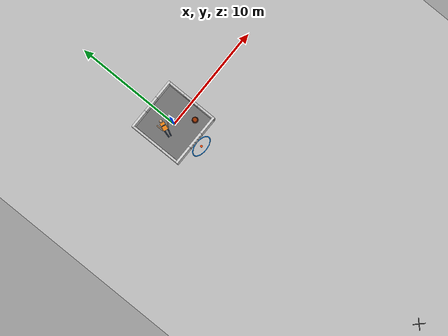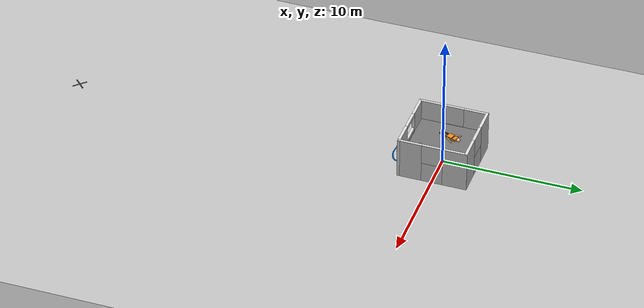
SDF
<?xml version="1.0" ?>
<sdf version="1.6">
  <world name="surveillance_building">

    <!-- ── Physics ─────────────────────────────────────────────── -->
    <physics name="default" default="true" type="ode">
      <max_step_size>0.002</max_step_size>
      <real_time_factor>1.0</real_time_factor>
      <real_time_update_rate>500</real_time_update_rate>
    </physics>

    <plugin
      filename="gz-sim-physics-system"
      name="gz::sim::systems::Physics">
    </plugin>

    <plugin
      filename="gz-sim-sensors-system"
      name="gz::sim::systems::Sensors">
    </plugin>

    <plugin
      filename="gz-sim-scene-broadcaster-system"
      name="gz::sim::systems::SceneBroadcaster">
    </plugin>

    <plugin
      filename="gz-sim-user-commands-system"
      name="gz::sim::systems::UserCommands">
    </plugin>

    <!-- ── Scene ──────────────────────────────────────────────── -->
    <scene>
      <ambient>0.6 0.6 0.6 1</ambient>
      <background>0.7 0.8 0.9 1</background>
      <shadows>true</shadows>
    </scene>

    <!-- ── Sun ────────────────────────────────────────────────── -->
    <light name="sun" type="directional">
      <cast_shadows>true</cast_shadows>
      <pose>0 0 10 0 0 0</pose>
      <diffuse>0.9 0.9 0.9 1</diffuse>
      <specular>0.1 0.1 0.1 1</specular>
      <direction>-0.5 0.1 -0.9</direction>
    </light>

    <!-- ── Ground Plane ───────────────────────────────────────── -->
    <model name="ground_plane">
      <static>true</static>
      <link name="link">
        <collision name="collision">
          <geometry>
            <plane>
              <normal>0 0 1</normal>
              <size>80 80</size>
            </plane>
          </geometry>
        </collision>
        <visual name="visual">
          <cast_shadows>false</cast_shadows>
          <geometry>
            <plane>
              <normal>0 0 1</normal>
              <size>80 80</size>
            </plane>
          </geometry>
          <material>
            <ambient>0.75 0.75 0.75 1</ambient>
            <diffuse>0.75 0.75 0.75 1</diffuse>
          </material>
        </visual>
      </link>
    </model>

    <model name="surveillance_building">
      <static>true</static>
      <pose>0 0 0 0 0 0</pose>

      <link name="floor">
        <pose>0 0 1.45 0 0 0</pose>
        <collision name="c">
          <geometry><box><size>4.55 4.55 0.1</size></box></geometry>
        </collision>
        <visual name="v">
          <geometry><box><size>4.55 4.55 0.1</size></box></geometry>
          <material>
            <ambient>0.45 0.45 0.45 1</ambient>
            <diffuse>0.45 0.45 0.45 1</diffuse>
          </material>
        </visual>
      </link>

      <!-- ══ NORTH WALL  (y = +2.4, outer face at y = +2.5) ══
           Runs along X-axis.
           ─────────────────────────────────────────────────────── -->

      <!-- Left column  x ∈ [−2.50, −0.75]  full height -->
      <link name="n_col_l">
        <pose>-1.625 2.4 1.5 0 0 0</pose>
        <collision name="c"><geometry><box><size>1.75 0.2 3.0</size></box></geometry></collision>
        <visual name="v">
          <geometry><box><size>1.75 0.2 3.0</size></box></geometry>
          <material><ambient>0.85 0.85 0.85 1</ambient><diffuse>0.85 0.85 0.85 1</diffuse></material>
        </visual>
      </link>

      <!-- Right column  x ∈ [+0.75, +2.50]  full height -->
      <link name="n_col_r">
        <pose>1.625 2.4 1.5 0 0 0</pose>
        <collision name="c"><geometry><box><size>1.75 0.2 3.0</size></box></geometry></collision>
        <visual name="v">
          <geometry><box><size>1.75 0.2 3.0</size></box></geometry>
          <material><ambient>0.85 0.85 0.85 1</ambient><diffuse>0.85 0.85 0.85 1</diffuse></material>
        </visual>
      </link>

      <!-- Solid lower wall and blocked upper window centre panel -->
      <link name="n_bot">
        <pose>0 2.4 0.75 0 0 0</pose>
        <collision name="c"><geometry><box><size>1.5 0.2 1.5</size></box></geometry></collision>
        <visual name="v">
          <geometry><box><size>1.5 0.2 1.5</size></box></geometry>
          <material><ambient>0.85 0.85 0.85 1</ambient><diffuse>0.85 0.85 0.85 1</diffuse></material>
        </visual>
      </link>

      <link name="n_top">
        <pose>0 2.4 2.25 0 0 0</pose>
        <collision name="c"><geometry><box><size>1.5 0.2 1.5</size></box></geometry></collision>
        <visual name="v">
          <geometry><box><size>1.5 0.2 1.5</size></box></geometry>
          <material><ambient>0.85 0.85 0.85 1</ambient><diffuse>0.85 0.85 0.85 1</diffuse></material>
        </visual>
      </link>

      <!-- ══ SOUTH WALL  (y = −2.4, outer face at y = −2.5) ══ -->

      <link name="s_col_l">
        <pose>-1.625 -2.4 1.5 0 0 0</pose>
        <collision name="c"><geometry><box><size>1.75 0.2 3.0</size></box></geometry></collision>
        <visual name="v">
          <geometry><box><size>1.75 0.2 3.0</size></box></geometry>
          <material><ambient>0.85 0.85 0.85 1</ambient><diffuse>0.85 0.85 0.85 1</diffuse></material>
        </visual>
      </link>

      <link name="s_col_r">
        <pose>1.625 -2.4 1.5 0 0 0</pose>
        <collision name="c"><geometry><box><size>1.75 0.2 3.0</size></box></geometry></collision>
        <visual name="v">
          <geometry><box><size>1.75 0.2 3.0</size></box></geometry>
          <material><ambient>0.85 0.85 0.85 1</ambient><diffuse>0.85 0.85 0.85 1</diffuse></material>
        </visual>
      </link>

      <link name="s_bot">
        <pose>0 -2.4 0.75 0 0 0</pose>
        <collision name="c"><geometry><box><size>1.5 0.2 1.5</size></box></geometry></collision>
        <visual name="v">
          <geometry><box><size>1.5 0.2 1.5</size></box></geometry>
          <material><ambient>0.85 0.85 0.85 1</ambient><diffuse>0.85 0.85 0.85 1</diffuse></material>
        </visual>
      </link>

      <link name="s_upper_sill">
        <pose>0 -2.4 1.625 0 0 0</pose>
        <collision name="c"><geometry><box><size>1.5 0.2 0.25</size></box></geometry></collision>
        <visual name="v">
          <geometry><box><size>1.5 0.2 0.25</size></box></geometry>
          <material><ambient>0.85 0.85 0.85 1</ambient><diffuse>0.85 0.85 0.85 1</diffuse></material>
        </visual>
      </link>

      <link name="s_top">
        <pose>0 -2.4 2.875 0 0 0</pose>
        <collision name="c"><geometry><box><size>1.5 0.2 0.25</size></box></geometry></collision>
        <visual name="v">
          <geometry><box><size>1.5 0.2 0.25</size></box></geometry>
          <material><ambient>0.85 0.85 0.85 1</ambient><diffuse>0.85 0.85 0.85 1</diffuse></material>
        </visual>
      </link>

      <!-- ══ EAST WALL  (x = +2.4, outer face at x = +2.5) ══
           Runs along Y-axis.  Size swaps x↔y vs N/S walls.
           ─────────────────────────────────────────────────────── -->

      <link name="e_col_l">
        <pose>2.4 -1.625 1.5 0 0 0</pose>
        <collision name="c"><geometry><box><size>0.2 1.75 3.0</size></box></geometry></collision>
        <visual name="v">
          <geometry><box><size>0.2 1.75 3.0</size></box></geometry>
          <material><ambient>0.80 0.80 0.80 1</ambient><diffuse>0.80 0.80 0.80 1</diffuse></material>
        </visual>
      </link>

      <link name="e_col_r">
        <pose>2.4 1.625 1.5 0 0 0</pose>
        <collision name="c"><geometry><box><size>0.2 1.75 3.0</size></box></geometry></collision>
        <visual name="v">
          <geometry><box><size>0.2 1.75 3.0</size></box></geometry>
          <material><ambient>0.80 0.80 0.80 1</ambient><diffuse>0.80 0.80 0.80 1</diffuse></material>
        </visual>
      </link>

      <link name="e_bot">
        <pose>2.4 0 0.75 0 0 0</pose>
        <collision name="c"><geometry><box><size>0.2 1.5 1.5</size></box></geometry></collision>
        <visual name="v">
          <geometry><box><size>0.2 1.5 1.5</size></box></geometry>
          <material><ambient>0.80 0.80 0.80 1</ambient><diffuse>0.80 0.80 0.80 1</diffuse></material>
        </visual>
      </link>

      <link name="e_top">
        <pose>2.4 0 2.25 0 0 0</pose>
        <collision name="c"><geometry><box><size>0.2 1.5 1.5</size></box></geometry></collision>
        <visual name="v">
          <geometry><box><size>0.2 1.5 1.5</size></box></geometry>
          <material><ambient>0.80 0.80 0.80 1</ambient><diffuse>0.80 0.80 0.80 1</diffuse></material>
        </visual>
      </link>

      <!-- ══ WEST WALL  (x = −2.4, outer face at x = −2.5) ══ -->

      <link name="w_col_l">
        <pose>-2.4 -1.625 1.5 0 0 0</pose>
        <collision name="c"><geometry><box><size>0.2 1.75 3.0</size></box></geometry></collision>
        <visual name="v">
          <geometry><box><size>0.2 1.75 3.0</size></box></geometry>
          <material><ambient>0.80 0.80 0.80 1</ambient><diffuse>0.80 0.80 0.80 1</diffuse></material>
        </visual>
      </link>

      <link name="w_col_r">
        <pose>-2.4 1.625 1.5 0 0 0</pose>
        <collision name="c"><geometry><box><size>0.2 1.75 3.0</size></box></geometry></collision>
        <visual name="v">
          <geometry><box><size>0.2 1.75 3.0</size></box></geometry>
          <material><ambient>0.80 0.80 0.80 1</ambient><diffuse>0.80 0.80 0.80 1</diffuse></material>
        </visual>
      </link>

      <link name="w_bot">
        <pose>-2.4 0 0.75 0 0 0</pose>
        <collision name="c"><geometry><box><size>0.2 1.5 1.5</size></box></geometry></collision>
        <visual name="v">
          <geometry><box><size>0.2 1.5 1.5</size></box></geometry>
          <material><ambient>0.80 0.80 0.80 1</ambient><diffuse>0.80 0.80 0.80 1</diffuse></material>
        </visual>
      </link>

      <link name="w_top">
        <pose>-2.4 0 2.25 0 0 0</pose>
        <collision name="c"><geometry><box><size>0.2 1.5 1.5</size></box></geometry></collision>
        <visual name="v">
          <geometry><box><size>0.2 1.5 1.5</size></box></geometry>
          <material><ambient>0.80 0.80 0.80 1</ambient><diffuse>0.80 0.80 0.80 1</diffuse></material>
        </visual>
      </link>

    </model>

    <!-- Drone home/start marker at launch pose (x=0, y=-27). -->
    <model name="home_start_marker">
      <static>true</static>
      <pose>0 -27 0.018 0 0 0</pose>
      <link name="x_marker">
        <visual name="slash_a">
          <cast_shadows>false</cast_shadows>
          <pose>0 0 0 0 0 0.7854</pose>
          <geometry><box><size>1.1 0.08 0.025</size></box></geometry>
          <material>
            <ambient>0.0 0.0 0.0 1</ambient>
            <diffuse>0.0 0.0 0.0 1</diffuse>
          </material>
        </visual>
        <visual name="slash_b">
          <cast_shadows>false</cast_shadows>
          <pose>0 0 0 0 0 -0.7854</pose>
          <geometry><box><size>1.1 0.08 0.025</size></box></geometry>
          <material>
            <ambient>0.0 0.0 0.0 1</ambient>
            <diffuse>0.0 0.0 0.0 1</diffuse>
          </material>
        </visual>
      </link>
    </model>

    <model name="inspection_ellipse_visual">
      <static>true</static>
      <pose>0 0 0 0 0 0</pose>
      <link name="visual_only">
        <visual name="ellipse_dot_00">
          <cast_shadows>false</cast_shadows>
          <pose>1.0000 -3.0000 0.04 0 0 0</pose>
          <geometry>
            <cylinder>
              <radius>0.045</radius>
              <length>0.025</length>
            </cylinder>
          </geometry>
          <material>
            <ambient>0.02 0.55 1.00 1</ambient>
            <diffuse>0.02 0.55 1.00 1</diffuse>
            <emissive>0.00 0.08 0.20 1</emissive>
          </material>
        </visual>
        <visual name="ellipse_dot_01">
          <cast_shadows>false</cast_shadows>
          <pose>0.9962 -2.9564 0.04 0 0 0</pose>
          <geometry>
            <cylinder>
              <radius>0.045</radius>
              <length>0.025</length>
            </cylinder>
          </geometry>
          <material>
            <ambient>0.02 0.55 1.00 1</ambient>
            <diffuse>0.02 0.55 1.00 1</diffuse>
            <emissive>0.00 0.08 0.20 1</emissive>
          </material>
        </visual>
        <visual name="ellipse_dot_02">
          <cast_shadows>false</cast_shadows>
          <pose>0.9848 -2.9132 0.04 0 0 0</pose>
          <geometry>
            <cylinder>
              <radius>0.045</radius>
              <length>0.025</length>
            </cylinder>
          </geometry>
          <material>
            <ambient>0.02 0.55 1.00 1</ambient>
            <diffuse>0.02 0.55 1.00 1</diffuse>
            <emissive>0.00 0.08 0.20 1</emissive>
          </material>
        </visual>
        <visual name="ellipse_dot_03">
          <cast_shadows>false</cast_shadows>
          <pose>0.9659 -2.8706 0.04 0 0 0</pose>
          <geometry>
            <cylinder>
              <radius>0.045</radius>
              <length>0.025</length>
            </cylinder>
          </geometry>
          <material>
            <ambient>0.02 0.55 1.00 1</ambient>
            <diffuse>0.02 0.55 1.00 1</diffuse>
            <emissive>0.00 0.08 0.20 1</emissive>
          </material>
        </visual>
        <visual name="ellipse_dot_04">
          <cast_shadows>false</cast_shadows>
          <pose>0.9397 -2.8290 0.04 0 0 0</pose>
          <geometry>
            <cylinder>
              <radius>0.045</radius>
              <length>0.025</length>
            </cylinder>
          </geometry>
          <material>
            <ambient>0.02 0.55 1.00 1</ambient>
            <diffuse>0.02 0.55 1.00 1</diffuse>
            <emissive>0.00 0.08 0.20 1</emissive>
          </material>
        </visual>
        <visual name="ellipse_dot_05">
          <cast_shadows>false</cast_shadows>
          <pose>0.9063 -2.7887 0.04 0 0 0</pose>
          <geometry>
            <cylinder>
              <radius>0.045</radius>
              <length>0.025</length>
            </cylinder>
          </geometry>
          <material>
            <ambient>0.02 0.55 1.00 1</ambient>
            <diffuse>0.02 0.55 1.00 1</diffuse>
            <emissive>0.00 0.08 0.20 1</emissive>
          </material>
        </visual>
        <visual name="ellipse_dot_06">
          <cast_shadows>false</cast_shadows>
          <pose>0.8660 -2.7500 0.04 0 0 0</pose>
          <geometry>
            <cylinder>
              <radius>0.045</radius>
              <length>0.025</length>
            </cylinder>
          </geometry>
          <material>
            <ambient>0.02 0.55 1.00 1</ambient>
            <diffuse>0.02 0.55 1.00 1</diffuse>
            <emissive>0.00 0.08 0.20 1</emissive>
          </material>
        </visual>
        <visual name="ellipse_dot_07">
          <cast_shadows>false</cast_shadows>
          <pose>0.8192 -2.7132 0.04 0 0 0</pose>
          <geometry>
            <cylinder>
              <radius>0.045</radius>
              <length>0.025</length>
            </cylinder>
          </geometry>
          <material>
            <ambient>0.02 0.55 1.00 1</ambient>
            <diffuse>0.02 0.55 1.00 1</diffuse>
            <emissive>0.00 0.08 0.20 1</emissive>
          </material>
        </visual>
        <visual name="ellipse_dot_08">
          <cast_shadows>false</cast_shadows>
          <pose>0.7660 -2.6786 0.04 0 0 0</pose>
          <geometry>
            <cylinder>
              <radius>0.045</radius>
              <length>0.025</length>
            </cylinder>
          </geometry>
          <material>
            <ambient>0.02 0.55 1.00 1</ambient>
            <diffuse>0.02 0.55 1.00 1</diffuse>
            <emissive>0.00 0.08 0.20 1</emissive>
          </material>
        </visual>
        <visual name="ellipse_dot_09">
          <cast_shadows>false</cast_shadows>
          <pose>0.7071 -2.6464 0.04 0 0 0</pose>
          <geometry>
            <cylinder>
              <radius>0.045</radius>
              <length>0.025</length>
            </cylinder>
          </geometry>
          <material>
            <ambient>0.02 0.55 1.00 1</ambient>
            <diffuse>0.02 0.55 1.00 1</diffuse>
            <emissive>0.00 0.08 0.20 1</emissive>
          </material>
        </visual>
        <visual name="ellipse_dot_10">
          <cast_shadows>false</cast_shadows>
          <pose>0.6428 -2.6170 0.04 0 0 0</pose>
          <geometry>
            <cylinder>
              <radius>0.045</radius>
              <length>0.025</length>
            </cylinder>
          </geometry>
          <material>
            <ambient>0.02 0.55 1.00 1</ambient>
            <diffuse>0.02 0.55 1.00 1</diffuse>
            <emissive>0.00 0.08 0.20 1</emissive>
          </material>
        </visual>
        <visual name="ellipse_dot_11">
          <cast_shadows>false</cast_shadows>
          <pose>0.5736 -2.5904 0.04 0 0 0</pose>
          <geometry>
            <cylinder>
              <radius>0.045</radius>
              <length>0.025</length>
            </cylinder>
          </geometry>
          <material>
            <ambient>0.02 0.55 1.00 1</ambient>
            <diffuse>0.02 0.55 1.00 1</diffuse>
            <emissive>0.00 0.08 0.20 1</emissive>
          </material>
        </visual>
        <visual name="ellipse_dot_12">
          <cast_shadows>false</cast_shadows>
          <pose>0.5000 -2.5670 0.04 0 0 0</pose>
          <geometry>
            <cylinder>
              <radius>0.045</radius>
              <length>0.025</length>
            </cylinder>
          </geometry>
          <material>
            <ambient>0.02 0.55 1.00 1</ambient>
            <diffuse>0.02 0.55 1.00 1</diffuse>
            <emissive>0.00 0.08 0.20 1</emissive>
          </material>
        </visual>
        <visual name="ellipse_dot_13">
          <cast_shadows>false</cast_shadows>
          <pose>0.4226 -2.5468 0.04 0 0 0</pose>
          <geometry>
            <cylinder>
              <radius>0.045</radius>
              <length>0.025</length>
            </cylinder>
          </geometry>
          <material>
            <ambient>0.02 0.55 1.00 1</ambient>
            <diffuse>0.02 0.55 1.00 1</diffuse>
            <emissive>0.00 0.08 0.20 1</emissive>
          </material>
        </visual>
        <visual name="ellipse_dot_14">
          <cast_shadows>false</cast_shadows>
          <pose>0.3420 -2.5302 0.04 0 0 0</pose>
          <geometry>
            <cylinder>
              <radius>0.045</radius>
              <length>0.025</length>
            </cylinder>
          </geometry>
          <material>
            <ambient>0.02 0.55 1.00 1</ambient>
            <diffuse>0.02 0.55 1.00 1</diffuse>
            <emissive>0.00 0.08 0.20 1</emissive>
          </material>
        </visual>
        <visual name="ellipse_dot_15">
          <cast_shadows>false</cast_shadows>
          <pose>0.2588 -2.5170 0.04 0 0 0</pose>
          <geometry>
            <cylinder>
              <radius>0.045</radius>
              <length>0.025</length>
            </cylinder>
          </geometry>
          <material>
            <ambient>0.02 0.55 1.00 1</ambient>
            <diffuse>0.02 0.55 1.00 1</diffuse>
            <emissive>0.00 0.08 0.20 1</emissive>
          </material>
        </visual>
        <visual name="ellipse_dot_16">
          <cast_shadows>false</cast_shadows>
          <pose>0.1736 -2.5076 0.04 0 0 0</pose>
          <geometry>
            <cylinder>
              <radius>0.045</radius>
              <length>0.025</length>
            </cylinder>
          </geometry>
          <material>
            <ambient>0.02 0.55 1.00 1</ambient>
            <diffuse>0.02 0.55 1.00 1</diffuse>
            <emissive>0.00 0.08 0.20 1</emissive>
          </material>
        </visual>
        <visual name="ellipse_dot_17">
          <cast_shadows>false</cast_shadows>
          <pose>0.0872 -2.5019 0.04 0 0 0</pose>
          <geometry>
            <cylinder>
              <radius>0.045</radius>
              <length>0.025</length>
            </cylinder>
          </geometry>
          <material>
            <ambient>0.02 0.55 1.00 1</ambient>
            <diffuse>0.02 0.55 1.00 1</diffuse>
            <emissive>0.00 0.08 0.20 1</emissive>
          </material>
        </visual>
        <visual name="ellipse_dot_18">
          <cast_shadows>false</cast_shadows>
          <pose>0.0000 -2.5000 0.04 0 0 0</pose>
          <geometry>
            <cylinder>
              <radius>0.045</radius>
              <length>0.025</length>
            </cylinder>
          </geometry>
          <material>
            <ambient>0.02 0.55 1.00 1</ambient>
            <diffuse>0.02 0.55 1.00 1</diffuse>
            <emissive>0.00 0.08 0.20 1</emissive>
          </material>
        </visual>
        <visual name="ellipse_dot_19">
          <cast_shadows>false</cast_shadows>
          <pose>-0.0872 -2.5019 0.04 0 0 0</pose>
          <geometry>
            <cylinder>
              <radius>0.045</radius>
              <length>0.025</length>
            </cylinder>
          </geometry>
          <material>
            <ambient>0.02 0.55 1.00 1</ambient>
            <diffuse>0.02 0.55 1.00 1</diffuse>
            <emissive>0.00 0.08 0.20 1</emissive>
          </material>
        </visual>
        <visual name="ellipse_dot_20">
          <cast_shadows>false</cast_shadows>
          <pose>-0.1736 -2.5076 0.04 0 0 0</pose>
          <geometry>
            <cylinder>
              <radius>0.045</radius>
              <length>0.025</length>
            </cylinder>
          </geometry>
          <material>
            <ambient>0.02 0.55 1.00 1</ambient>
            <diffuse>0.02 0.55 1.00 1</diffuse>
            <emissive>0.00 0.08 0.20 1</emissive>
          </material>
        </visual>
        <visual name="ellipse_dot_21">
          <cast_shadows>false</cast_shadows>
          <pose>-0.2588 -2.5170 0.04 0 0 0</pose>
          <geometry>
            <cylinder>
              <radius>0.045</radius>
              <length>0.025</length>
            </cylinder>
          </geometry>
          <material>
            <ambient>0.02 0.55 1.00 1</ambient>
            <diffuse>0.02 0.55 1.00 1</diffuse>
            <emissive>0.00 0.08 0.20 1</emissive>
          </material>
        </visual>
        <visual name="ellipse_dot_22">
          <cast_shadows>false</cast_shadows>
          <pose>-0.3420 -2.5302 0.04 0 0 0</pose>
          <geometry>
            <cylinder>
              <radius>0.045</radius>
              <length>0.025</length>
            </cylinder>
          </geometry>
          <material>
            <ambient>0.02 0.55 1.00 1</ambient>
            <diffuse>0.02 0.55 1.00 1</diffuse>
            <emissive>0.00 0.08 0.20 1</emissive>
          </material>
        </visual>
        <visual name="ellipse_dot_23">
          <cast_shadows>false</cast_shadows>
          <pose>-0.4226 -2.5468 0.04 0 0 0</pose>
          <geometry>
            <cylinder>
              <radius>0.045</radius>
              <length>0.025</length>
            </cylinder>
          </geometry>
          <material>
            <ambient>0.02 0.55 1.00 1</ambient>
            <diffuse>0.02 0.55 1.00 1</diffuse>
            <emissive>0.00 0.08 0.20 1</emissive>
          </material>
        </visual>
        <visual name="ellipse_dot_24">
          <cast_shadows>false</cast_shadows>
          <pose>-0.5000 -2.5670 0.04 0 0 0</pose>
          <geometry>
            <cylinder>
              <radius>0.045</radius>
              <length>0.025</length>
            </cylinder>
          </geometry>
          <material>
            <ambient>0.02 0.55 1.00 1</ambient>
            <diffuse>0.02 0.55 1.00 1</diffuse>
            <emissive>0.00 0.08 0.20 1</emissive>
          </material>
        </visual>
        <visual name="ellipse_dot_25">
          <cast_shadows>false</cast_shadows>
          <pose>-0.5736 -2.5904 0.04 0 0 0</pose>
          <geometry>
            <cylinder>
              <radius>0.045</radius>
              <length>0.025</length>
            </cylinder>
          </geometry>
          <material>
            <ambient>0.02 0.55 1.00 1</ambient>
            <diffuse>0.02 0.55 1.00 1</diffuse>
            <emissive>0.00 0.08 0.20 1</emissive>
          </material>
        </visual>
        <visual name="ellipse_dot_26">
          <cast_shadows>false</cast_shadows>
          <pose>-0.6428 -2.6170 0.04 0 0 0</pose>
          <geometry>
            <cylinder>
              <radius>0.045</radius>
              <length>0.025</length>
            </cylinder>
          </geometry>
          <material>
            <ambient>0.02 0.55 1.00 1</ambient>
            <diffuse>0.02 0.55 1.00 1</diffuse>
            <emissive>0.00 0.08 0.20 1</emissive>
          </material>
        </visual>
        <visual name="ellipse_dot_27">
          <cast_shadows>false</cast_shadows>
          <pose>-0.7071 -2.6464 0.04 0 0 0</pose>
          <geometry>
            <cylinder>
              <radius>0.045</radius>
              <length>0.025</length>
            </cylinder>
          </geometry>
          <material>
            <ambient>0.02 0.55 1.00 1</ambient>
            <diffuse>0.02 0.55 1.00 1</diffuse>
            <emissive>0.00 0.08 0.20 1</emissive>
          </material>
        </visual>
        <visual name="ellipse_dot_28">
          <cast_shadows>false</cast_shadows>
          <pose>-0.7660 -2.6786 0.04 0 0 0</pose>
          <geometry>
            <cylinder>
              <radius>0.045</radius>
              <length>0.025</length>
            </cylinder>
          </geometry>
          <material>
            <ambient>0.02 0.55 1.00 1</ambient>
            <diffuse>0.02 0.55 1.00 1</diffuse>
            <emissive>0.00 0.08 0.20 1</emissive>
          </material>
        </visual>
        <visual name="ellipse_dot_29">
          <cast_shadows>false</cast_shadows>
          <pose>-0.8192 -2.7132 0.04 0 0 0</pose>
          <geometry>
            <cylinder>
              <radius>0.045</radius>
              <length>0.025</length>
            </cylinder>
          </geometry>
          <material>
            <ambient>0.02 0.55 1.00 1</ambient>
            <diffuse>0.02 0.55 1.00 1</diffuse>
            <emissive>0.00 0.08 0.20 1</emissive>
          </material>
        </visual>
        <visual name="ellipse_dot_30">
          <cast_shadows>false</cast_shadows>
          <pose>-0.8660 -2.7500 0.04 0 0 0</pose>
          <geometry>
            <cylinder>
              <radius>0.045</radius>
              <length>0.025</length>
            </cylinder>
          </geometry>
          <material>
            <ambient>0.02 0.55 1.00 1</ambient>
            <diffuse>0.02 0.55 1.00 1</diffuse>
            <emissive>0.00 0.08 0.20 1</emissive>
          </material>
        </visual>
        <visual name="ellipse_dot_31">
          <cast_shadows>false</cast_shadows>
          <pose>-0.9063 -2.7887 0.04 0 0 0</pose>
          <geometry>
            <cylinder>
              <radius>0.045</radius>
              <length>0.025</length>
            </cylinder>
          </geometry>
          <material>
            <ambient>0.02 0.55 1.00 1</ambient>
            <diffuse>0.02 0.55 1.00 1</diffuse>
            <emissive>0.00 0.08 0.20 1</emissive>
          </material>
        </visual>
        <visual name="ellipse_dot_32">
          <cast_shadows>false</cast_shadows>
          <pose>-0.9397 -2.8290 0.04 0 0 0</pose>
          <geometry>
            <cylinder>
              <radius>0.045</radius>
              <length>0.025</length>
            </cylinder>
          </geometry>
          <material>
            <ambient>0.02 0.55 1.00 1</ambient>
            <diffuse>0.02 0.55 1.00 1</diffuse>
            <emissive>0.00 0.08 0.20 1</emissive>
          </material>
        </visual>
        <visual name="ellipse_dot_33">
          <cast_shadows>false</cast_shadows>
          <pose>-0.9659 -2.8706 0.04 0 0 0</pose>
          <geometry>
            <cylinder>
              <radius>0.045</radius>
              <length>0.025</length>
            </cylinder>
          </geometry>
          <material>
            <ambient>0.02 0.55 1.00 1</ambient>
            <diffuse>0.02 0.55 1.00 1</diffuse>
            <emissive>0.00 0.08 0.20 1</emissive>
          </material>
        </visual>
        <visual name="ellipse_dot_34">
          <cast_shadows>false</cast_shadows>
          <pose>-0.9848 -2.9132 0.04 0 0 0</pose>
          <geometry>
            <cylinder>
              <radius>0.045</radius>
              <length>0.025</length>
            </cylinder>
          </geometry>
          <material>
            <ambient>0.02 0.55 1.00 1</ambient>
            <diffuse>0.02 0.55 1.00 1</diffuse>
            <emissive>0.00 0.08 0.20 1</emissive>
          </material>
        </visual>
        <visual name="ellipse_dot_35">
          <cast_shadows>false</cast_shadows>
          <pose>-0.9962 -2.9564 0.04 0 0 0</pose>
          <geometry>
            <cylinder>
              <radius>0.045</radius>
              <length>0.025</length>
            </cylinder>
          </geometry>
          <material>
            <ambient>0.02 0.55 1.00 1</ambient>
            <diffuse>0.02 0.55 1.00 1</diffuse>
            <emissive>0.00 0.08 0.20 1</emissive>
          </material>
        </visual>
        <visual name="ellipse_dot_36">
          <cast_shadows>false</cast_shadows>
          <pose>-1.0000 -3.0000 0.04 0 0 0</pose>
          <geometry>
            <cylinder>
              <radius>0.045</radius>
              <length>0.025</length>
            </cylinder>
          </geometry>
          <material>
            <ambient>0.02 0.55 1.00 1</ambient>
            <diffuse>0.02 0.55 1.00 1</diffuse>
            <emissive>0.00 0.08 0.20 1</emissive>
          </material>
        </visual>
        <visual name="ellipse_dot_37">
          <cast_shadows>false</cast_shadows>
          <pose>-0.9962 -3.0436 0.04 0 0 0</pose>
          <geometry>
            <cylinder>
              <radius>0.045</radius>
              <length>0.025</length>
            </cylinder>
          </geometry>
          <material>
            <ambient>0.02 0.55 1.00 1</ambient>
            <diffuse>0.02 0.55 1.00 1</diffuse>
            <emissive>0.00 0.08 0.20 1</emissive>
          </material>
        </visual>
        <visual name="ellipse_dot_38">
          <cast_shadows>false</cast_shadows>
          <pose>-0.9848 -3.0868 0.04 0 0 0</pose>
          <geometry>
            <cylinder>
              <radius>0.045</radius>
              <length>0.025</length>
            </cylinder>
          </geometry>
          <material>
            <ambient>0.02 0.55 1.00 1</ambient>
            <diffuse>0.02 0.55 1.00 1</diffuse>
            <emissive>0.00 0.08 0.20 1</emissive>
          </material>
        </visual>
        <visual name="ellipse_dot_39">
          <cast_shadows>false</cast_shadows>
          <pose>-0.9659 -3.1294 0.04 0 0 0</pose>
          <geometry>
            <cylinder>
              <radius>0.045</radius>
              <length>0.025</length>
            </cylinder>
          </geometry>
          <material>
            <ambient>0.02 0.55 1.00 1</ambient>
            <diffuse>0.02 0.55 1.00 1</diffuse>
            <emissive>0.00 0.08 0.20 1</emissive>
          </material>
        </visual>
        <visual name="ellipse_dot_40">
          <cast_shadows>false</cast_shadows>
          <pose>-0.9397 -3.1710 0.04 0 0 0</pose>
          <geometry>
            <cylinder>
              <radius>0.045</radius>
              <length>0.025</length>
            </cylinder>
          </geometry>
          <material>
            <ambient>0.02 0.55 1.00 1</ambient>
            <diffuse>0.02 0.55 1.00 1</diffuse>
            <emissive>0.00 0.08 0.20 1</emissive>
          </material>
        </visual>
        <visual name="ellipse_dot_41">
          <cast_shadows>false</cast_shadows>
          <pose>-0.9063 -3.2113 0.04 0 0 0</pose>
          <geometry>
            <cylinder>
              <radius>0.045</radius>
              <length>0.025</length>
            </cylinder>
          </geometry>
          <material>
            <ambient>0.02 0.55 1.00 1</ambient>
            <diffuse>0.02 0.55 1.00 1</diffuse>
            <emissive>0.00 0.08 0.20 1</emissive>
          </material>
        </visual>
        <visual name="ellipse_dot_42">
          <cast_shadows>false</cast_shadows>
          <pose>-0.8660 -3.2500 0.04 0 0 0</pose>
          <geometry>
            <cylinder>
              <radius>0.045</radius>
              <length>0.025</length>
            </cylinder>
          </geometry>
          <material>
            <ambient>0.02 0.55 1.00 1</ambient>
            <diffuse>0.02 0.55 1.00 1</diffuse>
            <emissive>0.00 0.08 0.20 1</emissive>
          </material>
        </visual>
        <visual name="ellipse_dot_43">
          <cast_shadows>false</cast_shadows>
          <pose>-0.8192 -3.2868 0.04 0 0 0</pose>
          <geometry>
            <cylinder>
              <radius>0.045</radius>
              <length>0.025</length>
            </cylinder>
          </geometry>
          <material>
            <ambient>0.02 0.55 1.00 1</ambient>
            <diffuse>0.02 0.55 1.00 1</diffuse>
            <emissive>0.00 0.08 0.20 1</emissive>
          </material>
        </visual>
        <visual name="ellipse_dot_44">
          <cast_shadows>false</cast_shadows>
          <pose>-0.7660 -3.3214 0.04 0 0 0</pose>
          <geometry>
            <cylinder>
              <radius>0.045</radius>
              <length>0.025</length>
            </cylinder>
          </geometry>
          <material>
            <ambient>0.02 0.55 1.00 1</ambient>
            <diffuse>0.02 0.55 1.00 1</diffuse>
            <emissive>0.00 0.08 0.20 1</emissive>
          </material>
        </visual>
        <visual name="ellipse_dot_45">
          <cast_shadows>false</cast_shadows>
          <pose>-0.7071 -3.3536 0.04 0 0 0</pose>
          <geometry>
            <cylinder>
              <radius>0.045</radius>
              <length>0.025</length>
            </cylinder>
          </geometry>
          <material>
            <ambient>0.02 0.55 1.00 1</ambient>
            <diffuse>0.02 0.55 1.00 1</diffuse>
            <emissive>0.00 0.08 0.20 1</emissive>
          </material>
        </visual>
        <visual name="ellipse_dot_46">
          <cast_shadows>false</cast_shadows>
          <pose>-0.6428 -3.3830 0.04 0 0 0</pose>
          <geometry>
            <cylinder>
              <radius>0.045</radius>
              <length>0.025</length>
            </cylinder>
          </geometry>
          <material>
            <ambient>0.02 0.55 1.00 1</ambient>
            <diffuse>0.02 0.55 1.00 1</diffuse>
            <emissive>0.00 0.08 0.20 1</emissive>
          </material>
        </visual>
        <visual name="ellipse_dot_47">
          <cast_shadows>false</cast_shadows>
          <pose>-0.5736 -3.4096 0.04 0 0 0</pose>
          <geometry>
            <cylinder>
              <radius>0.045</radius>
              <length>0.025</length>
            </cylinder>
          </geometry>
          <material>
            <ambient>0.02 0.55 1.00 1</ambient>
            <diffuse>0.02 0.55 1.00 1</diffuse>
            <emissive>0.00 0.08 0.20 1</emissive>
          </material>
        </visual>
        <visual name="ellipse_dot_48">
          <cast_shadows>false</cast_shadows>
          <pose>-0.5000 -3.4330 0.04 0 0 0</pose>
          <geometry>
            <cylinder>
              <radius>0.045</radius>
              <length>0.025</length>
            </cylinder>
          </geometry>
          <material>
            <ambient>0.02 0.55 1.00 1</ambient>
            <diffuse>0.02 0.55 1.00 1</diffuse>
            <emissive>0.00 0.08 0.20 1</emissive>
          </material>
        </visual>
        <visual name="ellipse_dot_49">
          <cast_shadows>false</cast_shadows>
          <pose>-0.4226 -3.4532 0.04 0 0 0</pose>
          <geometry>
            <cylinder>
              <radius>0.045</radius>
              <length>0.025</length>
            </cylinder>
          </geometry>
          <material>
            <ambient>0.02 0.55 1.00 1</ambient>
            <diffuse>0.02 0.55 1.00 1</diffuse>
            <emissive>0.00 0.08 0.20 1</emissive>
          </material>
        </visual>
        <visual name="ellipse_dot_50">
          <cast_shadows>false</cast_shadows>
          <pose>-0.3420 -3.4698 0.04 0 0 0</pose>
          <geometry>
            <cylinder>
              <radius>0.045</radius>
              <length>0.025</length>
            </cylinder>
          </geometry>
          <material>
            <ambient>0.02 0.55 1.00 1</ambient>
            <diffuse>0.02 0.55 1.00 1</diffuse>
            <emissive>0.00 0.08 0.20 1</emissive>
          </material>
        </visual>
        <visual name="ellipse_dot_51">
          <cast_shadows>false</cast_shadows>
          <pose>-0.2588 -3.4830 0.04 0 0 0</pose>
          <geometry>
            <cylinder>
              <radius>0.045</radius>
              <length>0.025</length>
            </cylinder>
          </geometry>
          <material>
            <ambient>0.02 0.55 1.00 1</ambient>
            <diffuse>0.02 0.55 1.00 1</diffuse>
            <emissive>0.00 0.08 0.20 1</emissive>
          </material>
        </visual>
        <visual name="ellipse_dot_52">
          <cast_shadows>false</cast_shadows>
          <pose>-0.1736 -3.4924 0.04 0 0 0</pose>
          <geometry>
            <cylinder>
              <radius>0.045</radius>
              <length>0.025</length>
            </cylinder>
          </geometry>
          <material>
            <ambient>0.02 0.55 1.00 1</ambient>
            <diffuse>0.02 0.55 1.00 1</diffuse>
            <emissive>0.00 0.08 0.20 1</emissive>
          </material>
        </visual>
        <visual name="ellipse_dot_53">
          <cast_shadows>false</cast_shadows>
          <pose>-0.0872 -3.4981 0.04 0 0 0</pose>
          <geometry>
            <cylinder>
              <radius>0.045</radius>
              <length>0.025</length>
            </cylinder>
          </geometry>
          <material>
            <ambient>0.02 0.55 1.00 1</ambient>
            <diffuse>0.02 0.55 1.00 1</diffuse>
            <emissive>0.00 0.08 0.20 1</emissive>
          </material>
        </visual>
        <visual name="ellipse_dot_54">
          <cast_shadows>false</cast_shadows>
          <pose>-0.0000 -3.5000 0.04 0 0 0</pose>
          <geometry>
            <cylinder>
              <radius>0.045</radius>
              <length>0.025</length>
            </cylinder>
          </geometry>
          <material>
            <ambient>0.02 0.55 1.00 1</ambient>
            <diffuse>0.02 0.55 1.00 1</diffuse>
            <emissive>0.00 0.08 0.20 1</emissive>
          </material>
        </visual>
        <visual name="ellipse_dot_55">
          <cast_shadows>false</cast_shadows>
          <pose>0.0872 -3.4981 0.04 0 0 0</pose>
          <geometry>
            <cylinder>
              <radius>0.045</radius>
              <length>0.025</length>
            </cylinder>
          </geometry>
          <material>
            <ambient>0.02 0.55 1.00 1</ambient>
            <diffuse>0.02 0.55 1.00 1</diffuse>
            <emissive>0.00 0.08 0.20 1</emissive>
          </material>
        </visual>
        <visual name="ellipse_dot_56">
          <cast_shadows>false</cast_shadows>
          <pose>0.1736 -3.4924 0.04 0 0 0</pose>
          <geometry>
            <cylinder>
              <radius>0.045</radius>
              <length>0.025</length>
            </cylinder>
          </geometry>
          <material>
            <ambient>0.02 0.55 1.00 1</ambient>
            <diffuse>0.02 0.55 1.00 1</diffuse>
            <emissive>0.00 0.08 0.20 1</emissive>
          </material>
        </visual>
        <visual name="ellipse_dot_57">
          <cast_shadows>false</cast_shadows>
          <pose>0.2588 -3.4830 0.04 0 0 0</pose>
          <geometry>
            <cylinder>
              <radius>0.045</radius>
              <length>0.025</length>
            </cylinder>
          </geometry>
          <material>
            <ambient>0.02 0.55 1.00 1</ambient>
            <diffuse>0.02 0.55 1.00 1</diffuse>
            <emissive>0.00 0.08 0.20 1</emissive>
          </material>
        </visual>
        <visual name="ellipse_dot_58">
          <cast_shadows>false</cast_shadows>
          <pose>0.3420 -3.4698 0.04 0 0 0</pose>
          <geometry>
            <cylinder>
              <radius>0.045</radius>
              <length>0.025</length>
            </cylinder>
          </geometry>
          <material>
            <ambient>0.02 0.55 1.00 1</ambient>
            <diffuse>0.02 0.55 1.00 1</diffuse>
            <emissive>0.00 0.08 0.20 1</emissive>
          </material>
        </visual>
        <visual name="ellipse_dot_59">
          <cast_shadows>false</cast_shadows>
          <pose>0.4226 -3.4532 0.04 0 0 0</pose>
          <geometry>
            <cylinder>
              <radius>0.045</radius>
              <length>0.025</length>
            </cylinder>
          </geometry>
          <material>
            <ambient>0.02 0.55 1.00 1</ambient>
            <diffuse>0.02 0.55 1.00 1</diffuse>
            <emissive>0.00 0.08 0.20 1</emissive>
          </material>
        </visual>
        <visual name="ellipse_dot_60">
          <cast_shadows>false</cast_shadows>
          <pose>0.5000 -3.4330 0.04 0 0 0</pose>
          <geometry>
            <cylinder>
              <radius>0.045</radius>
              <length>0.025</length>
            </cylinder>
          </geometry>
          <material>
            <ambient>0.02 0.55 1.00 1</ambient>
            <diffuse>0.02 0.55 1.00 1</diffuse>
            <emissive>0.00 0.08 0.20 1</emissive>
          </material>
        </visual>
        <visual name="ellipse_dot_61">
          <cast_shadows>false</cast_shadows>
          <pose>0.5736 -3.4096 0.04 0 0 0</pose>
          <geometry>
            <cylinder>
              <radius>0.045</radius>
              <length>0.025</length>
            </cylinder>
          </geometry>
          <material>
            <ambient>0.02 0.55 1.00 1</ambient>
            <diffuse>0.02 0.55 1.00 1</diffuse>
            <emissive>0.00 0.08 0.20 1</emissive>
          </material>
        </visual>
        <visual name="ellipse_dot_62">
          <cast_shadows>false</cast_shadows>
          <pose>0.6428 -3.3830 0.04 0 0 0</pose>
          <geometry>
            <cylinder>
              <radius>0.045</radius>
              <length>0.025</length>
            </cylinder>
          </geometry>
          <material>
            <ambient>0.02 0.55 1.00 1</ambient>
            <diffuse>0.02 0.55 1.00 1</diffuse>
            <emissive>0.00 0.08 0.20 1</emissive>
          </material>
        </visual>
        <visual name="ellipse_dot_63">
          <cast_shadows>false</cast_shadows>
          <pose>0.7071 -3.3536 0.04 0 0 0</pose>
          <geometry>
            <cylinder>
              <radius>0.045</radius>
              <length>0.025</length>
            </cylinder>
          </geometry>
          <material>
            <ambient>0.02 0.55 1.00 1</ambient>
            <diffuse>0.02 0.55 1.00 1</diffuse>
            <emissive>0.00 0.08 0.20 1</emissive>
          </material>
        </visual>
        <visual name="ellipse_dot_64">
          <cast_shadows>false</cast_shadows>
          <pose>0.7660 -3.3214 0.04 0 0 0</pose>
          <geometry>
            <cylinder>
              <radius>0.045</radius>
              <length>0.025</length>
            </cylinder>
          </geometry>
          <material>
            <ambient>0.02 0.55 1.00 1</ambient>
            <diffuse>0.02 0.55 1.00 1</diffuse>
            <emissive>0.00 0.08 0.20 1</emissive>
          </material>
        </visual>
        <visual name="ellipse_dot_65">
          <cast_shadows>false</cast_shadows>
          <pose>0.8192 -3.2868 0.04 0 0 0</pose>
          <geometry>
            <cylinder>
              <radius>0.045</radius>
              <length>0.025</length>
            </cylinder>
          </geometry>
          <material>
            <ambient>0.02 0.55 1.00 1</ambient>
            <diffuse>0.02 0.55 1.00 1</diffuse>
            <emissive>0.00 0.08 0.20 1</emissive>
          </material>
        </visual>
        <visual name="ellipse_dot_66">
          <cast_shadows>false</cast_shadows>
          <pose>0.8660 -3.2500 0.04 0 0 0</pose>
          <geometry>
            <cylinder>
              <radius>0.045</radius>
              <length>0.025</length>
            </cylinder>
          </geometry>
          <material>
            <ambient>0.02 0.55 1.00 1</ambient>
            <diffuse>0.02 0.55 1.00 1</diffuse>
            <emissive>0.00 0.08 0.20 1</emissive>
          </material>
        </visual>
        <visual name="ellipse_dot_67">
          <cast_shadows>false</cast_shadows>
          <pose>0.9063 -3.2113 0.04 0 0 0</pose>
          <geometry>
            <cylinder>
              <radius>0.045</radius>
              <length>0.025</length>
            </cylinder>
          </geometry>
          <material>
            <ambient>0.02 0.55 1.00 1</ambient>
            <diffuse>0.02 0.55 1.00 1</diffuse>
            <emissive>0.00 0.08 0.20 1</emissive>
          </material>
        </visual>
        <visual name="ellipse_dot_68">
          <cast_shadows>false</cast_shadows>
          <pose>0.9397 -3.1710 0.04 0 0 0</pose>
          <geometry>
            <cylinder>
              <radius>0.045</radius>
              <length>0.025</length>
            </cylinder>
          </geometry>
          <material>
            <ambient>0.02 0.55 1.00 1</ambient>
            <diffuse>0.02 0.55 1.00 1</diffuse>
            <emissive>0.00 0.08 0.20 1</emissive>
          </material>
        </visual>
        <visual name="ellipse_dot_69">
          <cast_shadows>false</cast_shadows>
          <pose>0.9659 -3.1294 0.04 0 0 0</pose>
          <geometry>
            <cylinder>
              <radius>0.045</radius>
              <length>0.025</length>
            </cylinder>
          </geometry>
          <material>
            <ambient>0.02 0.55 1.00 1</ambient>
            <diffuse>0.02 0.55 1.00 1</diffuse>
            <emissive>0.00 0.08 0.20 1</emissive>
          </material>
        </visual>
        <visual name="ellipse_dot_70">
          <cast_shadows>false</cast_shadows>
          <pose>0.9848 -3.0868 0.04 0 0 0</pose>
          <geometry>
            <cylinder>
              <radius>0.045</radius>
              <length>0.025</length>
            </cylinder>
          </geometry>
          <material>
            <ambient>0.02 0.55 1.00 1</ambient>
            <diffuse>0.02 0.55 1.00 1</diffuse>
            <emissive>0.00 0.08 0.20 1</emissive>
          </material>
        </visual>
        <visual name="ellipse_dot_71">
          <cast_shadows>false</cast_shadows>
          <pose>0.9962 -3.0436 0.04 0 0 0</pose>
          <geometry>
            <cylinder>
              <radius>0.045</radius>
              <length>0.025</length>
            </cylinder>
          </geometry>
          <material>
            <ambient>0.02 0.55 1.00 1</ambient>
            <diffuse>0.02 0.55 1.00 1</diffuse>
            <emissive>0.00 0.08 0.20 1</emissive>
          </material>
        </visual>

        <visual name="ellipse_center">
          <cast_shadows>false</cast_shadows>
          <pose>0.0000 -3.0000 0.07 0 0 0</pose>
          <geometry>
            <cylinder>
              <radius>0.10</radius>
              <length>0.04</length>
            </cylinder>
          </geometry>
          <material>
            <ambient>1.00 0.30 0.05 1</ambient>
            <diffuse>1.00 0.30 0.05 1</diffuse>
            <emissive>0.18 0.03 0.00 1</emissive>
          </material>
        </visual>
      </link>
    </model>

    <model name="rescue_mannequin">
      <static>true</static>
      <pose>-0.75 0.45 1.5 0 0 -0.35</pose>

      <link name="body">
        <pose>0 0 0 0 0 0</pose>

        <visual name="torso">
          <pose>0 0 0.13 0 0 0</pose>
          <geometry><box><size>0.42 0.72 0.16</size></box></geometry>
          <material>
            <ambient>0.95 0.52 0.08 1</ambient>
            <diffuse>0.95 0.52 0.08 1</diffuse>
            <specular>0.12 0.12 0.12 1</specular>
          </material>
        </visual>
        <collision name="torso_c">
          <pose>0 0 0.13 0 0 0</pose>
          <geometry><box><size>0.42 0.72 0.16</size></box></geometry>
        </collision>

        <visual name="chest_marker">
          <pose>0 0.08 0.215 0 0 0</pose>
          <geometry><box><size>0.44 0.09 0.012</size></box></geometry>
          <material>
            <ambient>0.05 0.05 0.05 1</ambient>
            <diffuse>0.05 0.05 0.05 1</diffuse>
          </material>
        </visual>

        <visual name="head">
          <pose>0 0.52 0.15 0 0 0</pose>
          <geometry><sphere><radius>0.14</radius></sphere></geometry>
          <material>
            <ambient>0.86 0.70 0.55 1</ambient>
            <diffuse>0.86 0.70 0.55 1</diffuse>
          </material>
        </visual>
        <collision name="head_c">
          <pose>0 0.52 0.15 0 0 0</pose>
          <geometry><sphere><radius>0.14</radius></sphere></geometry>
        </collision>

        <visual name="left_arm">
          <pose>-0.36 0.06 0.13 1.5708 0 0.35</pose>
          <geometry><cylinder><radius>0.045</radius><length>0.72</length></cylinder></geometry>
          <material><ambient>0.86 0.70 0.55 1</ambient><diffuse>0.86 0.70 0.55 1</diffuse></material>
        </visual>
        <visual name="right_arm">
          <pose>0.36 -0.02 0.13 1.5708 0 -0.45</pose>
          <geometry><cylinder><radius>0.045</radius><length>0.72</length></cylinder></geometry>
          <material><ambient>0.86 0.70 0.55 1</ambient><diffuse>0.86 0.70 0.55 1</diffuse></material>
        </visual>

        <visual name="left_leg">
          <pose>-0.13 -0.62 0.12 1.5708 0 0.08</pose>
          <geometry><cylinder><radius>0.055</radius><length>0.78</length></cylinder></geometry>
          <material><ambient>0.12 0.16 0.22 1</ambient><diffuse>0.12 0.16 0.22 1</diffuse></material>
        </visual>
        <visual name="right_leg">
          <pose>0.15 -0.62 0.12 1.5708 0 -0.12</pose>
          <geometry><cylinder><radius>0.055</radius><length>0.78</length></cylinder></geometry>
          <material><ambient>0.12 0.16 0.22 1</ambient><diffuse>0.12 0.16 0.22 1</diffuse></material>
        </visual>
      </link>
    </model>

    <model name="fire_smoke_source">
      <static>true</static>
      <pose>1.35 -1.25 1.5 0 0 0</pose>

      <link name="source">
        <visual name="ember_base">
          <pose>0 0 0.035 0 0 0</pose>
          <geometry><cylinder><radius>0.28</radius><length>0.07</length></cylinder></geometry>
          <material>
            <ambient>0.18 0.06 0.02 1</ambient>
            <diffuse>0.18 0.06 0.02 1</diffuse>
            <emissive>0.85 0.22 0.03 1</emissive>
          </material>
        </visual>

        <visual name="flame_core">
          <pose>0 0 0.36 0 0 0</pose>
          <geometry><cylinder><radius>0.18</radius><length>0.55</length></cylinder></geometry>
          <material>
            <ambient>1.0 0.35 0.02 0.55</ambient>
            <diffuse>1.0 0.35 0.02 0.55</diffuse>
            <emissive>1.0 0.24 0.0 1</emissive>
          </material>
        </visual>

        <particle_emitter name="flames" type="box">
          <pose>0 0 0.18 0 0 0</pose>
          <emitting>true</emitting>
          <duration>0</duration>
          <lifetime>0.55</lifetime>
          <rate>55</rate>
          <size>0.20 0.20 0.06</size>
          <particle_size>0.10 0.10 0.10</particle_size>
          <scale_rate>0.35</scale_rate>
          <min_velocity>0.7</min_velocity>
          <max_velocity>1.2</max_velocity>
          <color_start>1.0 0.42 0.02 0.95</color_start>
          <color_end>0.70 0.03 0.0 0.0</color_end>
        </particle_emitter>

        <particle_emitter name="smoke" type="box">
          <pose>0 0 0.65 0 0 0</pose>
          <emitting>true</emitting>
          <duration>0</duration>
          <lifetime>2.6</lifetime>
          <rate>18</rate>
          <size>0.26 0.26 0.10</size>
          <particle_size>0.14 0.14 0.14</particle_size>
          <scale_rate>0.55</scale_rate>
          <min_velocity>0.18</min_velocity>
          <max_velocity>0.55</max_velocity>
          <color_start>0.16 0.16 0.16 0.32</color_start>
          <color_end>0.42 0.42 0.42 0.0</color_end>
        </particle_emitter>

        <light name="fire_glow" type="point">
          <pose>0 0 0.65 0 0 0</pose>
          <diffuse>1.0 0.35 0.05 1</diffuse>
          <specular>0.45 0.12 0.02 1</specular>
          <attenuation>
            <range>4.0</range>
            <constant>0.4</constant>
            <linear>0.55</linear>
            <quadratic>0.25</quadratic>
          </attenuation>
          <cast_shadows>false</cast_shadows>
        </light>
      </link>
    </model>

  </world>
</sdf>
